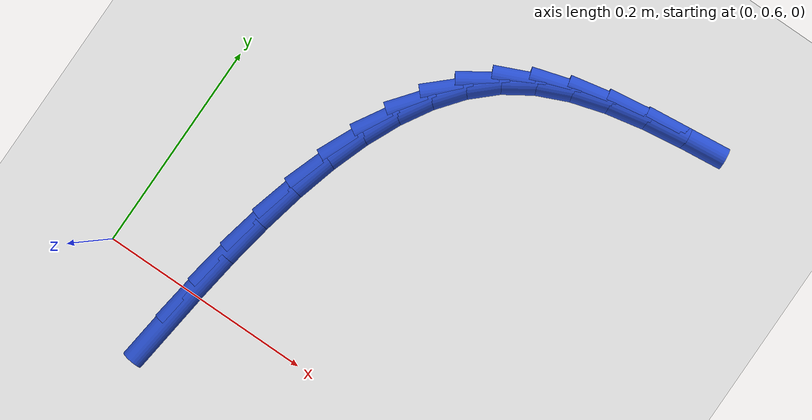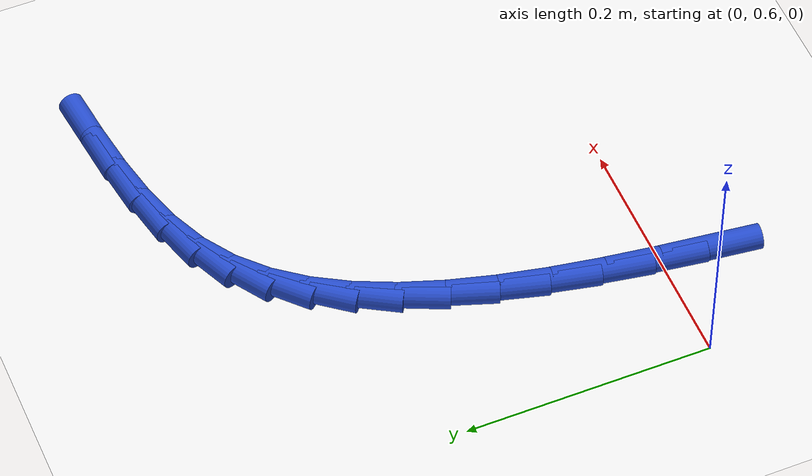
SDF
<sdf version="1.6">
 <world name="default">
  <model name="ground_plane">
   <static>1</static>
   <link name="link">
    <collision name="collision">
     <geometry><plane><normal>0 0 1</normal><size>100 100</size></plane></geometry>
     <surface><friction><ode><mu>100</mu><mu2>50</mu2></ode></friction></surface>
    </collision>
    <visual name="visual">
     <cast_shadows>0</cast_shadows>
     <geometry><plane><normal>0 0 1</normal><size>100 100</size></plane></geometry>
     <material>
      <script><uri>file://media/materials/scripts/gazebo.material</uri><name>Gazebo/WhiteGlow</name></script>
     </material>
    </visual>
   </link>
  </model>
  <model name="line">
   <link name="link_14">
    <pose>0.08104079852779782 0.5620355264100243 0.01 0 1.57 1.4507747156640454</pose>
    <collision name="collision">
     <geometry><cylinder><radius>0.01</radius><length>0.08</length></cylinder></geometry>
    </collision>
    <visual name="visual">
     <material>
      <script><name>Gazebo/Blue</name><uri>file://media/materials/scripts/gazebo.material</uri></script>
     </material>
     <geometry><cylinder><radius>0.01</radius><length>0.08</length></cylinder></geometry>
    </visual>
   </link>
   <link name="link_15">
    <pose>0.08627016727586281 0.6053963390153083 0.01 0 1.57 1.4291231876510653</pose>
    <collision name="collision">
     <geometry><cylinder><radius>0.01</radius><length>0.08</length></cylinder></geometry>
    </collision>
    <visual name="visual">
     <material>
      <script><name>Gazebo/Blue</name><uri>file://media/materials/scripts/gazebo.material</uri></script>
     </material>
     <geometry><cylinder><radius>0.01</radius><length>0.08</length></cylinder></geometry>
    </visual>
   </link>
   <link name="link_16">
    <pose>0.0923194194929533 0.6478089369118436 0.01 0 1.57 1.398297414345846</pose>
    <collision name="collision">
     <geometry><cylinder><radius>0.01</radius><length>0.08</length></cylinder></geometry>
    </collision>
    <visual name="visual">
     <material>
      <script><name>Gazebo/Blue</name><uri>file://media/materials/scripts/gazebo.material</uri></script>
     </material>
     <geometry><cylinder><radius>0.01</radius><length>0.08</length></cylinder></geometry>
    </visual>
   </link>
   <link name="link_17">
    <pose>0.0994793491187429 0.688903524644077 0.01 0 1.57 1.3568638489832283</pose>
    <collision name="collision">
     <geometry><cylinder><radius>0.01</radius><length>0.08</length></cylinder></geometry>
    </collision>
    <visual name="visual">
     <material>
      <script><name>Gazebo/Blue</name><uri>file://media/materials/scripts/gazebo.material</uri></script>
     </material>
     <geometry><cylinder><radius>0.01</radius><length>0.08</length></cylinder></geometry>
    </visual>
   </link>
   <link name="link_18">
    <pose>0.10804075009290519 0.7283103067564553 0.01 0 1.57 1.3028622538094277</pose>
    <collision name="collision">
     <geometry><cylinder><radius>0.01</radius><length>0.08</length></cylinder></geometry>
    </collision>
    <visual name="visual">
     <material>
      <script><name>Gazebo/Blue</name><uri>file://media/materials/scripts/gazebo.material</uri></script>
     </material>
     <geometry><cylinder><radius>0.01</radius><length>0.08</length></cylinder></geometry>
    </visual>
   </link>
   <link name="link_19">
    <pose>0.11829441635511374 0.7656594877934251 0.01 0 1.57 1.2337618328190587</pose>
    <collision name="collision">
     <geometry><cylinder><radius>0.01</radius><length>0.08</length></cylinder></geometry>
    </collision>
    <visual name="visual">
     <material>
      <script><name>Gazebo/Blue</name><uri>file://media/materials/scripts/gazebo.material</uri></script>
     </material>
     <geometry><cylinder><radius>0.01</radius><length>0.08</length></cylinder></geometry>
    </visual>
   </link>
   <link name="link_20">
    <pose>0.13053114184504214 0.8005812722994328 0.01 0 1.57 1.1465321587797026</pose>
    <collision name="collision">
     <geometry><cylinder><radius>0.01</radius><length>0.08</length></cylinder></geometry>
    </collision>
    <visual name="visual">
     <material>
      <script><name>Gazebo/Blue</name><uri>file://media/materials/scripts/gazebo.material</uri></script>
     </material>
     <geometry><cylinder><radius>0.01</radius><length>0.08</length></cylinder></geometry>
    </visual>
   </link>
   <link name="link_21">
    <pose>0.14504172050236402 0.8327058648189257 0.01 0 1.57 1.038012299472994</pose>
    <collision name="collision">
     <geometry><cylinder><radius>0.01</radius><length>0.08</length></cylinder></geometry>
    </collision>
    <visual name="visual">
     <material>
      <script><name>Gazebo/Blue</name><uri>file://media/materials/scripts/gazebo.material</uri></script>
     </material>
     <geometry><cylinder><radius>0.01</radius><length>0.08</length></cylinder></geometry>
    </visual>
   </link>
   <link name="link_22">
    <pose>0.16211694626675288 0.8616634698963499 0.01 0 1.57 0.905869826898732</pose>
    <collision name="collision">
     <geometry><cylinder><radius>0.01</radius><length>0.08</length></cylinder></geometry>
    </collision>
    <visual name="visual">
     <material>
      <script><name>Gazebo/Blue</name><uri>file://media/materials/scripts/gazebo.material</uri></script>
     </material>
     <geometry><cylinder><radius>0.01</radius><length>0.08</length></cylinder></geometry>
    </visual>
   </link>
   <link name="link_23">
    <pose>0.18204761307788248 0.8870842920761528 0.01 0 1.57 0.7503683671335277</pose>
    <collision name="collision">
     <geometry><cylinder><radius>0.01</radius><length>0.08</length></cylinder></geometry>
    </collision>
    <visual name="visual">
     <material>
      <script><name>Gazebo/Blue</name><uri>file://media/materials/scripts/gazebo.material</uri></script>
     </material>
     <geometry><cylinder><radius>0.01</radius><length>0.08</length></cylinder></geometry>
    </visual>
   </link>
   <link name="link_24">
    <pose>0.2051245148754261 0.9085985359027803 0.01 0 1.57 0.5774066878984406</pose>
    <collision name="collision">
     <geometry><cylinder><radius>0.01</radius><length>0.08</length></cylinder></geometry>
    </collision>
    <visual name="visual">
     <material>
      <script><name>Gazebo/Blue</name><uri>file://media/materials/scripts/gazebo.material</uri></script>
     </material>
     <geometry><cylinder><radius>0.01</radius><length>0.08</length></cylinder></geometry>
    </visual>
   </link>
   <link name="link_25">
    <pose>0.2316224218690235 0.9258610809252307 0.01 0 1.57 0.41662880057526847</pose>
    <collision name="collision">
     <geometry><cylinder><radius>0.01</radius><length>0.08</length></cylinder></geometry>
    </collision>
    <visual name="visual">
     <material>
      <script><name>Gazebo/Blue</name><uri>file://media/materials/scripts/gazebo.material</uri></script>
     </material>
     <geometry><cylinder><radius>0.01</radius><length>0.08</length></cylinder></geometry>
    </visual>
   </link>
   <link name="link_26">
    <pose>0.2614650021485289 0.9390674702199784 0.01 0 1.57 0.2926085041157337</pose>
    <collision name="collision">
     <geometry><cylinder><radius>0.01</radius><length>0.08</length></cylinder></geometry>
    </collision>
    <visual name="visual">
     <material>
      <script><name>Gazebo/Blue</name><uri>file://media/materials/scripts/gazebo.material</uri></script>
     </material>
     <geometry><cylinder><radius>0.01</radius><length>0.08</length></cylinder></geometry>
    </visual>
   </link>
   <link name="link_27">
    <pose>0.29423424758872224 0.9489393954034439 0.01 0 1.57 0.20360929972111882</pose>
    <collision name="collision">
     <geometry><cylinder><radius>0.01</radius><length>0.08</length></cylinder></geometry>
    </collision>
    <visual name="visual">
     <material>
      <script><name>Gazebo/Blue</name><uri>file://media/materials/scripts/gazebo.material</uri></script>
     </material>
     <geometry><cylinder><radius>0.01</radius><length>0.08</length></cylinder></geometry>
    </visual>
   </link>
   <link name="link_28">
    <pose>0.32949801195296163 0.9562203194251234 0.01 0 1.57 0.1445499177189462</pose>
    <collision name="collision">
     <geometry><cylinder><radius>0.01</radius><length>0.08</length></cylinder></geometry>
    </collision>
    <visual name="visual">
     <material>
      <script><name>Gazebo/Blue</name><uri>file://media/materials/scripts/gazebo.material</uri></script>
     </material>
     <geometry><cylinder><radius>0.01</radius><length>0.08</length></cylinder></geometry>
    </visual>
   </link>
   <link name="link_29">
    <pose>0.366824149004605 0.961653705234513 0.01 0 1.57 0.11067815848307282</pose>
    <collision name="collision">
     <geometry><cylinder><radius>0.01</radius><length>0.08</length></cylinder></geometry>
    </collision>
    <visual name="visual">
     <material>
      <script><name>Gazebo/Blue</name><uri>file://media/materials/scripts/gazebo.material</uri></script>
     </material>
     <geometry><cylinder><radius>0.01</radius><length>0.08</length></cylinder></geometry>
    </visual>
   </link>
  </model>
 </world>
</sdf>
